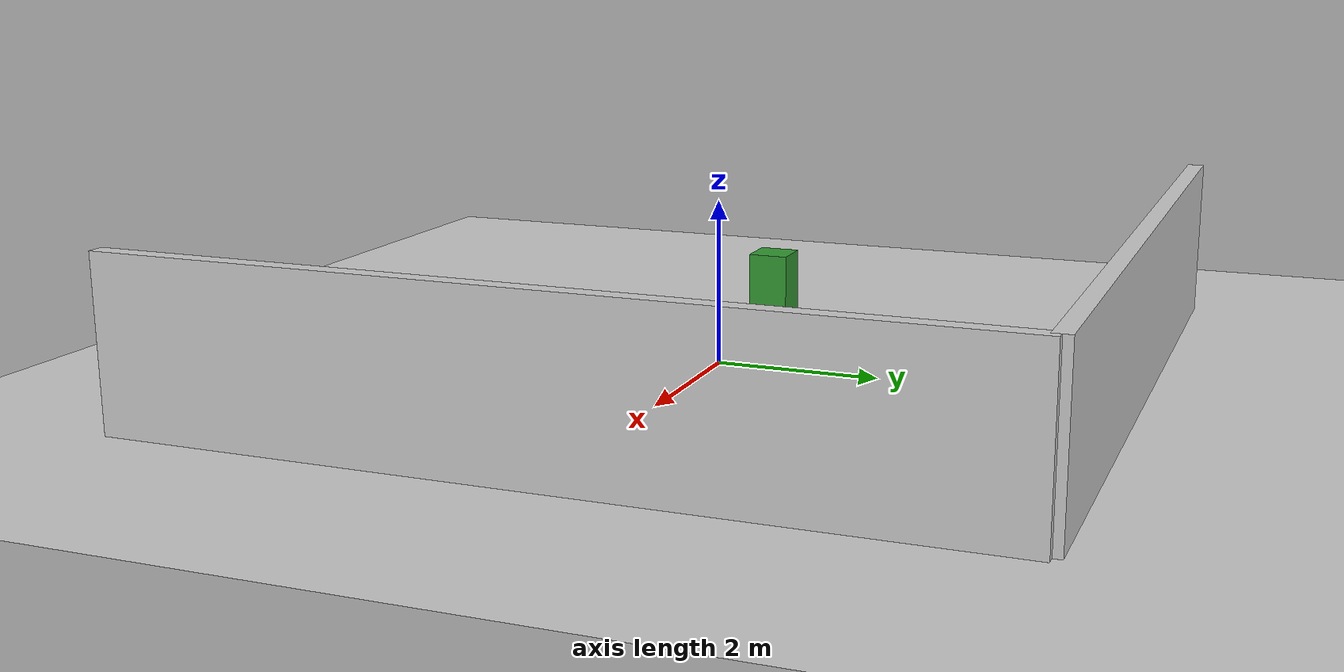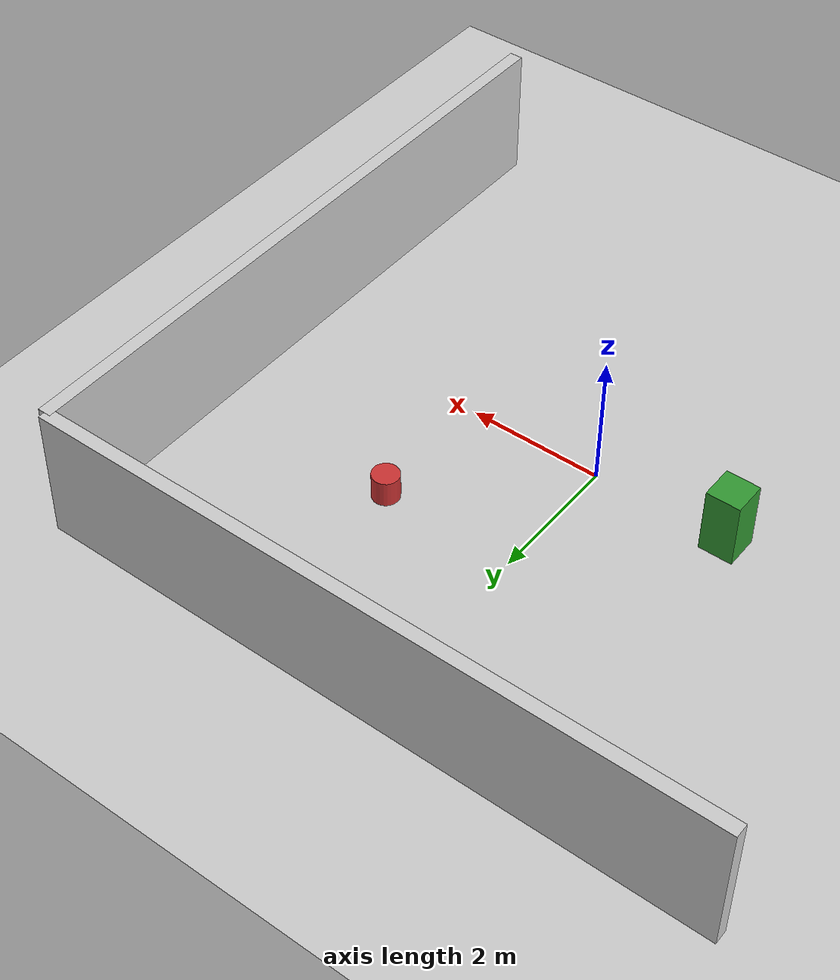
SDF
<?xml version="1.0" ?>
<sdf version="1.7">
  <world name="simple_room">
    <!-- Physics parameters -->
    <physics type="ode">
      <gravity>0 0 -9.8</gravity>
      <max_step_size>0.001</max_step_size>
      <real_time_factor>1.0</real_time_factor>
      <real_time_update_rate>1000</real_time_update_rate>
    </physics>

    <!-- Include ground plane -->
    <include>
      <uri>model://ground_plane</uri>
    </include>

    <!-- Include sun for lighting -->
    <include>
      <uri>model://sun</uri>
    </include>

    <!-- Simple room with walls -->
    <model name="wall_1">
      <pose>0 5 1 0 0 0</pose>
      <static>true</static>
      <link name="link">
        <collision name="collision">
          <geometry>
            <box>
              <size>10 0.2 2</size>
            </box>
          </geometry>
        </collision>
        <visual name="visual">
          <geometry>
            <box>
              <size>10 0.2 2</size>
            </box>
          </geometry>
          <material>
            <ambient>0.8 0.8 0.8 1</ambient>
            <diffuse>0.8 0.8 0.8 1</diffuse>
          </material>
        </visual>
      </link>
    </model>

    <model name="wall_2">
      <pose>5 0 1 0 0 1.57</pose>
      <static>true</static>
      <link name="link">
        <collision name="collision">
          <geometry>
            <box>
              <size>10 0.2 2</size>
            </box>
          </geometry>
        </collision>
        <visual name="visual">
          <geometry>
            <box>
              <size>10 0.2 2</size>
            </box>
          </geometry>
          <material>
            <ambient>0.8 0.8 0.8 1</ambient>
            <diffuse>0.8 0.8 0.8 1</diffuse>
          </material>
        </visual>
      </link>
    </model>

    <!-- Add a simple obstacle -->
    <model name="obstacle">
      <pose>-2 0 0.5 0 0 0</pose>
      <static>false</static>
      <link name="link">
        <collision name="collision">
          <geometry>
            <box>
              <size>0.5 0.5 1</size>
            </box>
          </geometry>
        </collision>
        <visual name="visual">
          <geometry>
            <box>
              <size>0.5 0.5 1</size>
            </box>
          </geometry>
          <material>
            <ambient>0.2 0.6 0.2 1</ambient>
            <diffuse>0.2 0.6 0.2 1</diffuse>
          </material>
        </visual>
        <inertial>
          <mass>1.0</mass>
          <inertia>
            <ixx>0.1</ixx>
            <ixy>0</ixy>
            <ixz>0</ixz>
            <iyy>0.1</iyy>
            <iyz>0</iyz>
            <izz>0.1</izz>
          </inertia>
        </inertial>
      </link>
    </model>

    <!-- Add a target object for the robot to interact with -->
    <model name="target">
      <pose>2 2 0.2 0 0 0</pose>
      <static>false</static>
      <link name="link">
        <collision name="collision">
          <geometry>
            <cylinder>
              <radius>0.2</radius>
              <length>0.4</length>
            </cylinder>
          </geometry>
        </collision>
        <visual name="visual">
          <geometry>
            <cylinder>
              <radius>0.2</radius>
              <length>0.4</length>
            </cylinder>
          </geometry>
          <material>
            <ambient>0.8 0.2 0.2 1</ambient>
            <diffuse>0.8 0.2 0.2 1</diffuse>
          </material>
        </visual>
        <inertial>
          <mass>0.5</mass>
          <inertia>
            <ixx>0.02</ixx>
            <ixy>0</ixy>
            <ixz>0</ixz>
            <iyy>0.02</iyy>
            <iyz>0</iyz>
            <izz>0.04</izz>
          </inertia>
        </inertial>
      </link>
    </model>
  </world>
</sdf>
